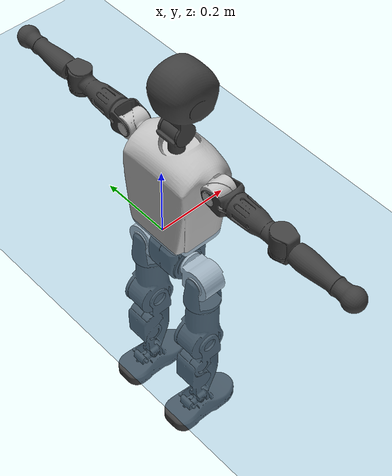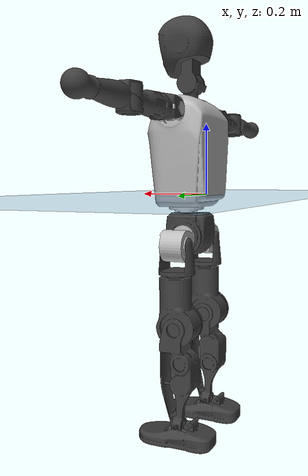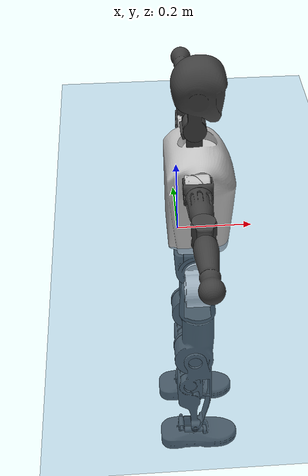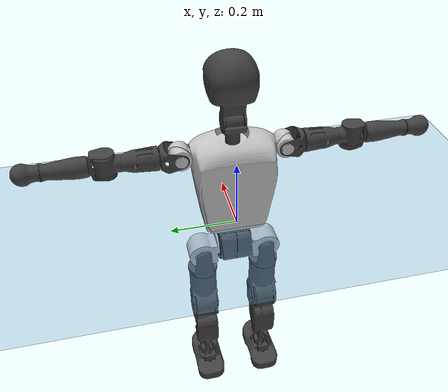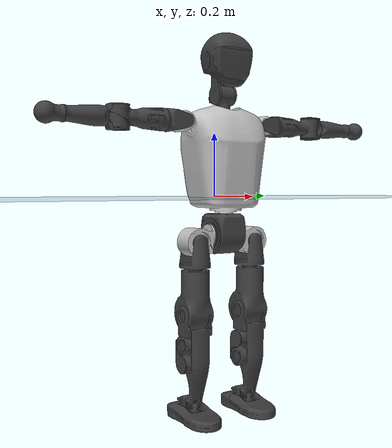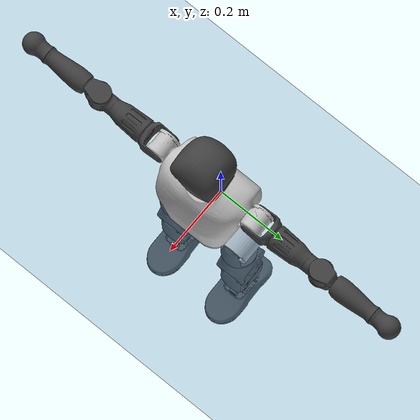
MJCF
<mujoco model="T1">
  <compiler angle="radian" assetdir="assets" balanceinertia="true" inertiafromgeom="false"/>

  <option timestep="0.005" density="1.2" viscosity="2e-05"/>

  <size nkey="1"/>

  <visual>
    <quality shadowsize="8192"/>
    <map shadowclip="0.5"/>
  </visual>

  <default>
    <default class="/">
      <joint armature="0.01" damping="0.01" frictionloss="0.1"/>
      <geom contype="0" conaffinity="0" group="1" solref="-1000 -80"/>
      <site size="0.01 0.005 0.005" group="5"/>
      <general forcelimited="true" biastype="affine" gainprm="25" biasprm="0 -25 -0.6"/>
      <default class="t1">
        <geom rgba="0.25 0.25 0.25 1"/>
        <default class="visual">
          <geom type="mesh" group="2"/>
        </default>
        <default class="collision">
          <geom group="3"/>
        </default>
        <default class="foot">
          <geom size="0.1115 0.05 0.015" type="box" condim="6" group="4" priority="1" solimp="0.015 1 0.015"/>
        </default>
        <default class="reward_collision_sphere">
          <geom group="5" rgba="1 0 0 1"/>
        </default>
      </default>
    </default>
  </default>

  <asset>
    <texture type="skybox" colorspace="auto" name="//unnamed_texture_0" builtin="gradient" rgb1="0.95 0.95 0.95" rgb2="0.95 0.95 0.95" width="100" height="600"/>
    <texture type="2d" colorspace="auto" name="texplane" builtin="checker" rgb1="0.345 0.575 0.748" rgb2="0.345 0.575 0.748" markrgb="1 1 1" width="512" height="512"/>
    <material name="MatPlane" class="/" texture="texplane" texuniform="true" texrepeat="2 2" specular="0.9"/>
    <mesh name="Trunk" class="/" file="Trunk.stl"/>
    <mesh name="H1" class="/" file="H1.stl"/>
    <mesh name="H2" class="/" file="H2.stl"/>
    <mesh name="AL1" class="/" file="AL1.stl"/>
    <mesh name="AL2" class="/" file="AL2.stl"/>
    <mesh name="AL3" class="/" file="AL3.stl"/>
    <mesh name="left_hand_link" class="/" file="left_hand_link.stl"/>
    <mesh name="AR1" class="/" file="AR1.stl"/>
    <mesh name="AR2" class="/" file="AR2.stl"/>
    <mesh name="AR3" class="/" file="AR3.stl"/>
    <mesh name="right_hand_link" class="/" file="right_hand_link.stl"/>
    <mesh name="Waist" class="/" file="Waist.stl"/>
    <mesh name="Hip_Pitch_Left" class="/" file="Hip_Pitch_Left.stl"/>
    <mesh name="Hip_Roll_Left" class="/" file="Hip_Roll_Left.stl"/>
    <mesh name="Hip_Yaw_Left" class="/" file="Hip_Yaw_Left.stl"/>
    <mesh name="Shank_Left" class="/" file="Shank_Left.stl"/>
    <mesh name="Ankle_Cross_Left" class="/" file="Ankle_Cross_Left.stl"/>
    <mesh name="left_foot_link" class="/" file="left_foot_link.stl"/>
    <mesh name="Hip_Pitch_Right" class="/" file="Hip_Pitch_Right.stl"/>
    <mesh name="Hip_Roll_Right" class="/" file="Hip_Roll_Right.stl"/>
    <mesh name="Hip_Yaw_Right" class="/" file="Hip_Yaw_Right.stl"/>
    <mesh name="Shank_Right" class="/" file="Shank_Right.stl"/>
    <mesh name="Ankle_Cross_Right" class="/" file="Ankle_Cross_Right.stl"/>
    <mesh name="right_foot_link" class="/" file="right_foot_link.stl"/>
  </asset>

  <worldbody>
    <geom name="floor" class="/" size="100 100 0.125" type="plane" group="0" material="MatPlane"/>
    <light name="toplight_shadow" class="/" pos="0 0 5" dir="0.0990148 0.0990148 -0.990148" type="directional" ambient="0.04 0.04 0.04" diffuse="0.55 0.55 0.55" specular="0.12 0.12 0.12"/>
    <light name="toplight_fill" class="/" pos="0 0 5" dir="0.0990148 0.0990148 -0.990148" type="directional" castshadow="false" ambient="0.04 0.04 0.04" diffuse="0.3 0.3 0.3" specular="0.08 0.08 0.08"/>
    <body name="trunk" childclass="t1" pos="4.3289e-05 0.000427746 -0.000758639" quat="1 4.40921e-05 -1.62314e-05 6.74863e-06">
      <inertial pos="0.0428192 0.000266697 0.108601" quat="0.999921 -0.00270521 -0.0122658 0.000103206" mass="9.59469" diaginertia="0.0281967 0.0691121 0.0664468"/>
      <joint name="//unnamed_joint_0" type="free" armature="0" damping="0" frictionloss="0"/>
      <geom name="//unnamed_geom_1" class="visual" rgba="0.76 0.76 0.76 1" mesh="Trunk"/>
      <geom name="//unnamed_geom_2" class="collision" size="0.0700864 0.0934486 0.140173" pos="0.047449 0 0.124276" type="box"/>
      <geom name="//unnamed_geom_3" class="reward_collision_sphere" size="0.107466" pos="0.047449 0 0.103563"/>
      <geom name="//unnamed_geom_4" class="reward_collision_sphere" size="0.0140173" pos="0.047449 0.0830458 0"/>
      <geom name="//unnamed_geom_5" class="reward_collision_sphere" size="0.0140173" pos="0.047449 -0.0830458 0"/>
      <geom name="//unnamed_geom_6" class="reward_collision_sphere" size="0.0140173" pos="0.047449 0.10454 0.186414"/>
      <geom name="//unnamed_geom_7" class="reward_collision_sphere" size="0.0140173" pos="0.047449 -0.10454 0.186414"/>
      <site name="imu" pos="-0.000145759 -0.00172401 0.0011245" size="0.00934486"/>
      <camera name="track" pos="0 -1.95402 0" quat="0.707107 0.707107 0 0" mode="trackcom"/>
      <camera name="ego_camera" pos="0.0964796 0 0.434965" quat="-0.5 -0.5 0.5 0.5"/>
      <body name="H1" pos="0.0486233 0.000683992 0.251356" quat="1 -4.08818e-05 -4.46631e-05 -0.000261593">
        <inertial pos="-0.00143826 -0.00212879 0.0592256" quat="0.763577 -0.0124463 0.00146275 0.645595" mass="0.361187" diaginertia="7.50235e-05 0.000196697 0.000177024"/>
        <joint name="AAHead_yaw" pos="0 0 0" axis="0.000507179 -0.000204051 1" range="-1.57627 1.57742" armature="0.009445" damping="0.0122718" frictionloss="0.097536"/>
        <geom name="//unnamed_geom_8" class="visual" mesh="H1"/>
        <body name="H2" pos="-0.00072242 -0.000466097 0.0630822" quat="1 0.000172464 -0.00021562 -0.000126858">
          <inertial pos="0.00605213 8.71772e-06 0.101359" quat="0.988611 0.108117 -0.0735546 -0.074487" mass="0.514573" diaginertia="0.000630677 0.00173694 0.00203845"/>
          <joint name="Head_pitch" pos="0 0 0" axis="-0.00330702 -0.999991 -0.00261116" range="-1.21167 0.355016" armature="0.00928813" damping="0.00392397" frictionloss="0.0937522"/>
          <geom name="//unnamed_geom_9" class="visual" mesh="H2"/>
          <geom name="//unnamed_geom_10" class="collision" size="0.0747589" pos="0.00790817 0 0.113919"/>
          <geom name="//unnamed_geom_11" class="reward_collision_sphere" size="0.0841037" pos="0.0158163 0 0.103563"/>
        </body>
      </body>
      <body name="AL1" pos="0.045846 0.104201 0.227666" quat="1 1.77351e-05 0.000359546 4.82485e-05">
        <inertial pos="-0.000385634 0.044461 -0.000247435" quat="0.504553 0.495413 -0.504633 0.495317" mass="0.435266" diaginertia="0.000429996 0.0011633 0.000353287"/>
        <joint name="Left_Shoulder_Pitch" pos="0 0 0" axis="-0.00269635 0.999996 0.000799153" range="-3.30496 1.21791" armature="0.00978984" damping="0.0117898" frictionloss="0.0956052"/>
        <geom name="//unnamed_geom_12" class="visual" rgba="0.76 0.76 0.76 1" mesh="AL1"/>
        <body name="AL2" pos="0.000278292 0.046473 6.40035e-05" quat="1 -1.83956e-05 3.81477e-05 -4.77924e-06">
          <inertial pos="0.00344492 0.0362243 -0.000212954" quat="0.485579 0.512583 -0.486879 0.514218" mass="0.13101" diaginertia="0.000124101 0.000309384 0.000211994"/>
          <joint name="Left_Shoulder_Roll" pos="0 0 0" axis="-0.999999 0.00110844 0.00116855" stiffness="0.00235279" range="-1.57006 1.73081" armature="0.00893492" damping="0.000295474" frictionloss="0.0934479"/>
          <geom name="//unnamed_geom_13" class="visual" mesh="AL2"/>
          <body name="AL3" pos="0.00150823 0.0596925 0.000398597" quat="1 5.12843e-05 2.36312e-05 7.03491e-05">
            <inertial pos="-0.000456244 0.0837692 -0.000637479" quat="0.707454 0.706755 0.00234108 0.00104246" mass="0.837554" diaginertia="0.00399039 0.0115757 0.000742163"/>
            <joint name="Left_Elbow_Pitch" pos="0 0 0" axis="-0.00160251 -0.999998 -0.000876041" range="-2.26749 2.27611" armature="0.00903375" damping="0.00892831" frictionloss="0.0952327"/>
            <geom name="//unnamed_geom_14" class="visual" mesh="AL3"/>
            <geom name="//unnamed_geom_15" class="collision" size="0.0280346 0.0700864" pos="0 0.0488505 0" quat="0.707105 0.707108 0 0" type="cylinder"/>
            <geom name="//unnamed_geom_16" class="reward_collision_sphere" size="0.0336415"/>
            <body name="left_hand_link" pos="0.00122779 0.143822 0.000871717" quat="1 0.000101389 2.54044e-06 -1.68346e-05">
              <inertial pos="-0.000724504 0.106307 0.000152193" quat="0.706442 0.707769 -0.00135683 -0.00023034" mass="0.268738" diaginertia="0.00252347 0.00716024 0.000256897"/>
              <joint name="Left_Elbow_Yaw" pos="0 0 0" axis="-0.000737619 4.29598e-05 1" range="-2.43355 0.0103608" armature="0.0096004" damping="0.010287" frictionloss="0.0901903"/>
              <geom name="//unnamed_geom_17" class="visual" mesh="left_hand_link"/>
              <geom name="//unnamed_geom_18" class="collision" size="0.0280346 0.0817675" pos="0 0.127011 0" quat="0.707105 0.707108 0 0" type="cylinder"/>
              <geom name="//unnamed_geom_19" class="reward_collision_sphere" size="0.0467243"/>
              <geom name="//unnamed_geom_20" class="reward_collision_sphere" size="0.032707" pos="0 0.107471 0"/>
              <geom name="//unnamed_geom_21" class="reward_collision_sphere" size="0.032707" pos="0 0.210057 0"/>
            </body>
          </body>
        </body>
      </body>
      <body name="AR1" pos="0.0445214 -0.103102 0.226732" quat="1 -1.06459e-06 0.000448525 -1.84944e-05">
        <inertial pos="-0.0013891 -0.0438678 -0.000213692" quat="0.504295 0.49427 -0.50523 0.496111" mass="0.428268" diaginertia="0.000422633 0.00116044 0.000348848"/>
        <joint name="Right_Shoulder_Pitch" pos="0 0 0" axis="0.00469771 -0.999986 0.00247176" stiffness="0.00030018" range="-1.22587 3.30856" armature="0.00909744" damping="0.00379885" frictionloss="0.0926796"/>
        <geom name="//unnamed_geom_22" class="visual" rgba="0.76 0.76 0.76 1" mesh="AR1"/>
        <body name="AR2" pos="-0.000246686 -0.0446611 0.000509503" quat="1 0.000138406 4.14205e-05 3.64808e-05">
          <inertial pos="0.0021965 -0.037209 0.000715469" quat="0.511689 0.487438 -0.511896 0.488406" mass="0.130633" diaginertia="0.000124083 0.000310097 0.00021118"/>
          <joint name="Right_Shoulder_Roll" pos="0 0 0" axis="-0.999934 0.00890185 0.0072947" range="-1.73438 1.55576" armature="0.00918237" damping="0.00952259" frictionloss="0.0906436"/>
          <geom name="//unnamed_geom_23" class="visual" mesh="AR2"/>
          <body name="AR3" pos="-2.13161e-05 -0.058849 0.000891377" quat="1 4.13458e-05 0.000287439 8.70065e-05">
            <inertial pos="-0.000367501 -0.0841601 -0.000303604" quat="0.708551 0.705658 -0.000608716 -0.00164505" mass="0.833617" diaginertia="0.00402383 0.0115229 0.000748493"/>
            <joint name="Right_Elbow_Pitch" pos="0 0 0" axis="0.000757829 1 -0.000481457" range="-2.25691 2.27699" armature="0.00949056" damping="0.00518337" frictionloss="0.0941402"/>
            <geom name="//unnamed_geom_24" class="visual" mesh="AR3"/>
            <geom name="//unnamed_geom_25" class="collision" size="0.0280346 0.0700864" pos="0 -0.0488505 0" quat="0.707105 0.707108 0 0" type="cylinder"/>
            <geom name="//unnamed_geom_26" class="reward_collision_sphere" size="0.0336415"/>
            <body name="right_hand_link" pos="-0.000378749 -0.14335 -0.000914038" quat="1 -0.000167295 -7.54596e-05 8.02031e-05">
              <inertial pos="-0.000354742 -0.106827 0.000770735" quat="0.703684 0.710509 0.000887499 -0.00218144" mass="0.268632" diaginertia="0.00255393 0.00729637 0.000259494"/>
              <joint name="Right_Elbow_Yaw" pos="0 0 0" axis="0.00223093 0.00036536 0.999997" range="-0.00202194 2.43022" armature="0.0093085" damping="0.00664392" frictionloss="0.094524"/>
              <geom name="//unnamed_geom_27" class="visual" mesh="right_hand_link"/>
              <geom name="//unnamed_geom_28" class="collision" size="0.0280346 0.0817675" pos="0 -0.127011 0" quat="0.707105 0.707108 0 0" type="cylinder"/>
              <geom name="//unnamed_geom_29" class="reward_collision_sphere" size="0.0467243"/>
              <geom name="//unnamed_geom_30" class="reward_collision_sphere" size="0.032707" pos="0 -0.107471 0"/>
              <geom name="//unnamed_geom_31" class="reward_collision_sphere" size="0.032707" pos="0 -0.210057 0"/>
            </body>
          </body>
        </body>
      </body>
      <body name="Waist" pos="0.0492585 -0.000579375 -0.118925" quat="1 -0.000104921 0.000362644 0.000134039">
        <inertial pos="0.00186381 0.000164922 0.00804273" quat="0.983652 0.0001799 -0.180062 0.00263504" mass="2.06811" diaginertia="0.00164552 0.0046761 0.00560387"/>
        <joint name="Waist" pos="0 0 0" axis="-0.00362383 0.00155471 0.999992" range="-1.5726 1.56884" armature="0.00946698" damping="0.0144475" frictionloss="0.0930739"/>
        <geom name="//unnamed_geom_32" class="visual" mesh="Waist"/>
        <body name="Hip_Pitch_Left" pos="-0.000443589 0.1035 -0.000392556" quat="1 9.31372e-06 1.26638e-05 2.17467e-05">
          <inertial pos="0.000320858 -0.00765938 -0.0189162" quat="0.975785 0.218207 0.0151515 0.000519603" mass="0.834594" diaginertia="0.000559023 0.00131435 0.00151388"/>
          <joint name="Left_Hip_Pitch" pos="0 0 0" axis="-3.72454e-05 1 -7.31947e-05" range="-1.8071 1.57675" armature="0.00923212" damping="0.00728828" frictionloss="0.092771"/>
          <geom name="//unnamed_geom_33" class="visual" rgba="0.76 0.76 0.76 1" mesh="Hip_Pitch_Left"/>
          <body name="Hip_Roll_Left" pos="0.000640994 -0.00032429 -0.0218851" quat="1 -0.000361848 2.87005e-05 0.000323203">
            <inertial pos="0.00131224 0.000742929 -0.0551799" quat="0.707035 -0.00560018 -0.00847041 0.707105" mass="0.314749" diaginertia="0.000545419 0.0013625 0.000615037"/>
            <joint name="Left_Hip_Roll" pos="0 0 0" axis="-0.999999 0.00123052 -5.24114e-05" range="-1.55272 0.200828" armature="0.00923137" damping="0.0109215" frictionloss="0.0947512"/>
            <geom name="//unnamed_geom_34" class="visual" mesh="Hip_Roll_Left"/>
            <geom name="//unnamed_geom_35" class="reward_collision_sphere" size="0.0513967"/>
            <body name="Hip_Yaw_Left" pos="0.00183037 4.75268e-05 -0.0856424" quat="1 1.82e-05 5.19633e-05 -0.000170746">
              <inertial pos="-0.00489361 -0.000661573 -0.0918297" quat="0.697651 -0.0327695 -0.0315628 0.714991" mass="1.76382" diaginertia="0.00799921 0.0223792 0.00304168"/>
              <joint name="Left_Hip_Yaw" pos="0 0 0" axis="0.00271375 0.00320573 -0.999991" range="-0.995894 1.00484" armature="0.00943501" damping="0.004966" frictionloss="0.0907886"/>
              <geom name="//unnamed_geom_36" class="visual" mesh="Hip_Yaw_Left"/>
              <geom name="//unnamed_geom_37" class="collision" size="0.0467243 0.0747589" type="cylinder"/>
              <body name="Shank_Left" pos="-0.0113945 -0.000179348 -0.13933" quat="1 -1.42413e-05 -1.39543e-05 8.89187e-05">
                <inertial pos="-0.00523033 0.000959064 -0.129153" quat="0.997729 0.00191773 -0.0230321 0.0632647" mass="1.4299" diaginertia="0.0107659 0.0312716 0.00224028"/>
                <joint name="Left_Knee_Pitch" pos="0 0 0" axis="-0.00131383 0.999992 0.00385409" range="-0.0165531 2.33208" armature="0.00941158" damping="0.00671574" frictionloss="0.093123"/>
                <geom name="//unnamed_geom_38" class="visual" mesh="Shank_Left"/>
                <geom name="//unnamed_geom_39" class="collision" size="0.0467243 0.0700864" pos="0 0 -0.124276" type="cylinder"/>
                <geom name="//unnamed_geom_40" class="reward_collision_sphere" size="0.0607416"/>
                <body name="Ankle_Cross_Left" pos="0.000429833 0.000308796 -0.289856" quat="1 0.000239957 0.000195622 0.000179998">
                  <inertial pos="-0.00357666 0.000468375 -0.00757401" quat="0.443651 0.551226 0.550379 0.443178" mass="0.0593725" diaginertia="8.90099e-06 2.29121e-05 1.34925e-05"/>
                  <joint name="Left_Ankle_Pitch" pos="0 0 0" axis="0.000659795 0.999995 0.00311425" range="-0.873138 0.351621" armature="0.00917479" damping="0.00485726" frictionloss="0.0973926"/>
                  <geom name="//unnamed_geom_41" class="visual" mesh="Ankle_Cross_Left"/>
                  <body name="left_foot_link" pos="0.0002449 -0.00130597 -0.0125133" quat="1 0.000149157 -7.91915e-05 5.52498e-05">
                    <inertial pos="2.79258e-05 -0.000424819 -0.00956774" quat="-0.000886214 0.617833 -0.00218945 0.786306" mass="0.561856" diaginertia="0.00084569 0.00211209 0.00259919"/>
                    <joint name="Left_Ankle_Roll" pos="0 0 0" axis="-0.999998 -0.000435402 0.00208013" stiffness="0.000320894" range="-0.441412 0.442164" armature="0.00956359" damping="0.00789961" frictionloss="0.0936727"/>
                    <geom name="//unnamed_geom_42" class="visual" mesh="left_foot_link"/>
                    <geom name="left_foot" class="foot" size="0.101476 0.0441353 0.0140223" pos="0.00790817 0 -0.0155345"/>
                    <geom name="//unnamed_geom_44" class="reward_collision_sphere" size="0.0485933" pos="0.00790817 0 -0.0155345"/>
                    <geom name="//unnamed_geom_45" class="reward_collision_sphere" size="0.0280346" pos="0.0751276 -0.0224712 -0.0155345"/>
                    <geom name="//unnamed_geom_46" class="reward_collision_sphere" size="0.0280346" pos="-0.0553572 -0.0224712 -0.0155345"/>
                    <site name="left_foot" class="foot" pos="0.00790817 0 -0.0155345" size="0.00934486"/>
                  </body>
                </body>
              </body>
            </body>
          </body>
        </body>
        <body name="Hip_Pitch_Right" pos="-0.00110544 -0.103475 0.000461327" quat="1 -0.000104935 0.000260171 -0.000336912">
          <inertial pos="0.00069634 0.007578 -0.0186029" quat="0.972943 -0.230463 0.0145967 -0.00747834" mass="0.84181" diaginertia="0.000561166 0.0013134 0.00149766"/>
          <joint name="Right_Hip_Pitch" pos="0 0 0" axis="-6.65667e-05 -1 -0.00052606" range="-1.56166 1.81737" armature="0.00972177" damping="0.00618109" frictionloss="0.0962937"/>
          <geom name="//unnamed_geom_47" class="visual" rgba="0.76 0.76 0.76 1" mesh="Hip_Pitch_Right"/>
          <body name="Hip_Roll_Right" pos="-0.000576471 0.00101295 -0.0210481" quat="1 -0.000319167 5.54501e-05 6.45143e-06">
            <inertial pos="0.00115085 -0.00039549 -0.0547838" quat="0.706482 -0.00545817 -0.00626828 0.707683" mass="0.312709" diaginertia="0.000534569 0.00133656 0.000607889"/>
            <joint name="Right_Hip_Roll" pos="0 0 0" axis="-0.999982 -0.00384302 -0.00455523" stiffness="0.00137612" range="-0.196529 1.56978" armature="0.00923113" damping="0.0078316" frictionloss="0.0968382"/>
            <geom name="//unnamed_geom_48" class="visual" mesh="Hip_Roll_Right"/>
            <geom name="//unnamed_geom_49" class="reward_collision_sphere" size="0.0513967"/>
            <body name="Hip_Yaw_Right" pos="-0.000468931 0.000554151 -0.0855191" quat="1 -4.86805e-05 3.70926e-05 -0.000107336">
              <inertial pos="-0.00473095 -0.00104959 -0.0930567" quat="0.714419 -0.0315676 -0.0337383 0.698191" mass="1.73698" diaginertia="0.00790472 0.0223828 0.00304645"/>
              <joint name="Right_Hip_Yaw" pos="0 0 0" axis="0.00103856 -0.00027423 -0.999999" range="-0.986469 0.992002" armature="0.00911051" damping="0.00771506" frictionloss="0.0932127"/>
              <geom name="//unnamed_geom_50" class="visual" mesh="Hip_Yaw_Right"/>
              <geom name="//unnamed_geom_51" class="collision" size="0.0467243 0.0747589" type="cylinder"/>
              <body name="Shank_Right" pos="-0.011093 -0.000516924 -0.139387" quat="1 5.73834e-05 2.1917e-05 -2.40239e-05">
                <inertial pos="-0.00473798 -2.06062e-05 -0.126408" quat="0.999346 -0.000972802 -0.0221646 -0.0285392" mass="1.47033" diaginertia="0.010848 0.0313816 0.00235929"/>
                <joint name="Right_Knee_Pitch" pos="0 0 0" axis="0.0064629 -0.999972 0.00376024" range="-2.35483 -0.00650166" armature="0.00932857" damping="0.00868735" frictionloss="0.0936371"/>
                <geom name="//unnamed_geom_52" class="visual" mesh="Shank_Right"/>
                <geom name="//unnamed_geom_53" class="collision" size="0.0467243 0.0700864" pos="0 0 -0.124276" type="cylinder"/>
                <geom name="//unnamed_geom_54" class="reward_collision_sphere" size="0.0607416"/>
                <body name="Ankle_Cross_Right" pos="0.000326003 -0.000147666 -0.290155" quat="1 -0.00022778 -8.59765e-05 0.000288159">
                  <inertial pos="-0.00335066 0.000511084 -0.0083569" quat="0.442699 0.551178 0.551657 0.4426" mass="0.059676" diaginertia="8.93509e-06 2.27243e-05 1.35184e-05"/>
                  <joint name="Right_Ankle_Pitch" pos="0 0 0" axis="-0.000166102 -0.999999 0.00119352" range="-0.368013 0.86753" armature="0.00935971" damping="0.0100312" frictionloss="0.0964889"/>
                  <geom name="//unnamed_geom_55" class="visual" mesh="Ankle_Cross_Right"/>
                  <body name="right_foot_link" pos="0.000953761 -0.00135467 -0.0125417" quat="1 -5.07769e-05 -6.89447e-05 -5.45479e-05">
                    <inertial pos="-0.000729821 0.000842255 -0.0094712" quat="0.00246399 0.620668 0.00346682 0.784062" mass="0.557206" diaginertia="0.000830312 0.00211213 0.00261858"/>
                    <joint name="Right_Ankle_Roll" pos="0 0 0" axis="-0.999999 0.000172046 0.00129285" range="-0.449067 0.43315" armature="0.00905387" damping="0.0102764" frictionloss="0.0934427"/>
                    <geom name="//unnamed_geom_56" class="visual" mesh="right_foot_link"/>
                    <geom name="right_foot" class="foot" size="0.102038 0.0461683 0.014279" pos="0.00790817 0 -0.0155345"/>
                    <geom name="//unnamed_geom_58" class="reward_collision_sphere" size="0.0373794"/>
                    <geom name="//unnamed_geom_59" class="reward_collision_sphere" size="0.0280346" pos="0.00790817 0 -0.0155345"/>
                    <geom name="//unnamed_geom_60" class="reward_collision_sphere" size="0.0280346" pos="0.0751276 0.0224712 -0.0155345"/>
                    <geom name="//unnamed_geom_61" class="reward_collision_sphere" size="0.0280346" pos="-0.0553572 0.0224712 -0.0155345"/>
                    <site name="right_foot" class="foot" pos="0.00790817 0 -0.0155345" size="0.00934486"/>
                  </body>
                </body>
              </body>
            </body>
          </body>
        </body>
      </body>
    </body>
  </worldbody>

  <contact>
    <pair class="/" geom1="floor" geom2="left_foot" name="//unnamed_contact_0"/>
    <pair class="/" geom1="floor" geom2="right_foot" name="//unnamed_contact_1"/>
  </contact>

  <actuator>
    <general name="AAHead_yaw" class="/" joint="AAHead_yaw" forcerange="-6.33379 6.33379" gainprm="23.3289" biasprm="0 -23.3289 -0.56305"/>
    <general name="Head_pitch" class="/" joint="Head_pitch" forcerange="-6.34037 6.34037" gainprm="23.3289" biasprm="0 -23.3289 -0.56305"/>
    <general name="Left_Shoulder_Pitch" class="/" joint="Left_Shoulder_Pitch" forcerange="-16.8968 16.8968" gainprm="23.3289" biasprm="0 -23.3289 -0.56305"/>
    <general name="Left_Shoulder_Roll" class="/" joint="Left_Shoulder_Roll" forcerange="-16.6645 16.6645" gainprm="23.3289" biasprm="0 -23.3289 -0.56305"/>
    <general name="Left_Elbow_Pitch" class="/" joint="Left_Elbow_Pitch" forcerange="-16.8592 16.8592" gainprm="23.3289" biasprm="0 -23.3289 -0.56305"/>
    <general name="Left_Elbow_Yaw" class="/" joint="Left_Elbow_Yaw" forcerange="-17.5014 17.5014" gainprm="23.3289" biasprm="0 -23.3289 -0.56305"/>
    <general name="Right_Shoulder_Pitch" class="/" joint="Right_Shoulder_Pitch" forcerange="-16.7968 16.7968" gainprm="23.3289" biasprm="0 -23.3289 -0.56305"/>
    <general name="Right_Shoulder_Roll" class="/" joint="Right_Shoulder_Roll" forcerange="-16.7844 16.7844" gainprm="23.3289" biasprm="0 -23.3289 -0.56305"/>
    <general name="Right_Elbow_Pitch" class="/" joint="Right_Elbow_Pitch" forcerange="-16.9022 16.9022" gainprm="23.3289" biasprm="0 -23.3289 -0.56305"/>
    <general name="Right_Elbow_Yaw" class="/" joint="Right_Elbow_Yaw" forcerange="-16.599 16.599" gainprm="23.3289" biasprm="0 -23.3289 -0.56305"/>
    <general name="Waist" class="/" joint="Waist" forcerange="-27.7233 27.7233" gainprm="23.3289" biasprm="0 -23.3289 -0.56305"/>
    <general name="Left_Hip_Pitch" class="/" joint="Left_Hip_Pitch" forcerange="-41.8277 41.8277" gainprm="23.3289" biasprm="0 -23.3289 -0.56305"/>
    <general name="Left_Hip_Roll" class="/" joint="Left_Hip_Roll" forcerange="-27.7731 27.7731" gainprm="23.3289" biasprm="0 -23.3289 -0.56305"/>
    <general name="Left_Hip_Yaw" class="/" joint="Left_Hip_Yaw" forcerange="-27.51 27.51" gainprm="23.3289" biasprm="0 -23.3289 -0.56305"/>
    <general name="Left_Knee_Pitch" class="/" joint="Left_Knee_Pitch" forcerange="-54.1448 54.1448" gainprm="23.3289" biasprm="0 -23.3289 -0.56305"/>
    <general name="Left_Ankle_Pitch" class="/" joint="Left_Ankle_Pitch" forcerange="-18.0625 18.0625" gainprm="23.3289" biasprm="0 -23.3289 -0.56305"/>
    <general name="Left_Ankle_Roll" class="/" joint="Left_Ankle_Roll" forcerange="-14.1837 14.1837" gainprm="23.3289" biasprm="0 -23.3289 -0.56305"/>
    <general name="Right_Hip_Pitch" class="/" joint="Right_Hip_Pitch" forcerange="-42.2808 42.2808" gainprm="23.3289" biasprm="0 -23.3289 -0.56305"/>
    <general name="Right_Hip_Roll" class="/" joint="Right_Hip_Roll" forcerange="-28.8145 28.8145" gainprm="23.3289" biasprm="0 -23.3289 -0.56305"/>
    <general name="Right_Hip_Yaw" class="/" joint="Right_Hip_Yaw" forcerange="-28.8814 28.8814" gainprm="23.3289" biasprm="0 -23.3289 -0.56305"/>
    <general name="Right_Knee_Pitch" class="/" joint="Right_Knee_Pitch" forcerange="-54.966 54.966" gainprm="23.3289" biasprm="0 -23.3289 -0.56305"/>
    <general name="Right_Ankle_Pitch" class="/" joint="Right_Ankle_Pitch" forcerange="-18.1058 18.1058" gainprm="23.3289" biasprm="0 -23.3289 -0.56305"/>
    <general name="Right_Ankle_Roll" class="/" joint="Right_Ankle_Roll" forcerange="-13.9917 13.9917" gainprm="23.3289" biasprm="0 -23.3289 -0.56305"/>
  </actuator>

  <sensor>
    <gyro site="imu" name="imu_angular_velocity"/>
    <velocimeter site="imu" name="imu_linear_velocity"/>
    <framelinvel objtype="site" objname="left_foot" name="left_foot_global_linear_velocity"/>
    <framelinvel objtype="site" objname="right_foot" name="right_foot_global_linear_velocity"/>
  </sensor>

  <keyframe>
    <key name="home" qpos="0 0 0.6385 1 0 0 0 0 0 0 1.4 0 -0.4 0 -1.4 0 0.4 0 -0.4 0 0 0.8 -0.4 0 0.4 0 0 -0.8 0.4 0"/>
  </keyframe>
</mujoco>
